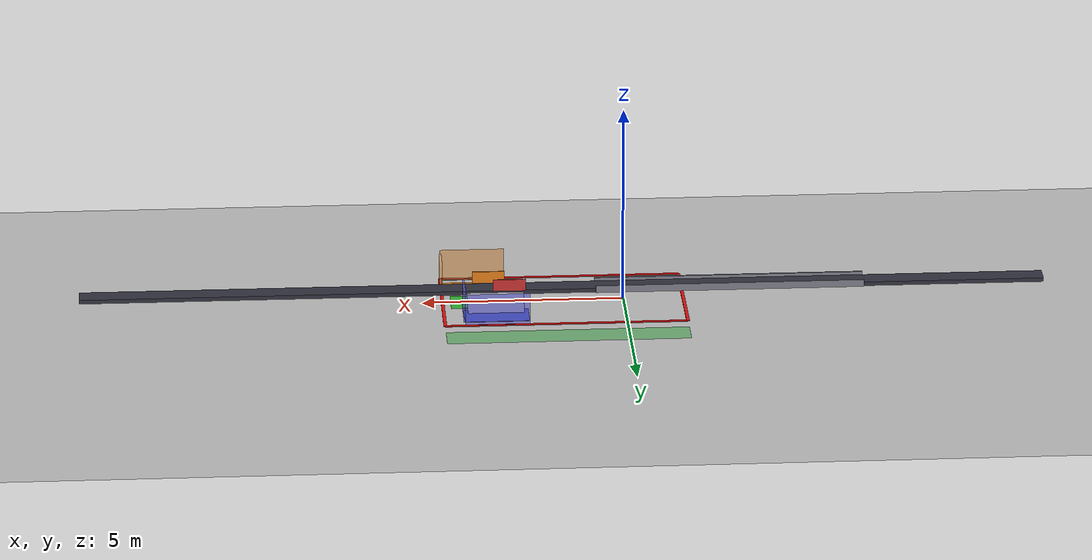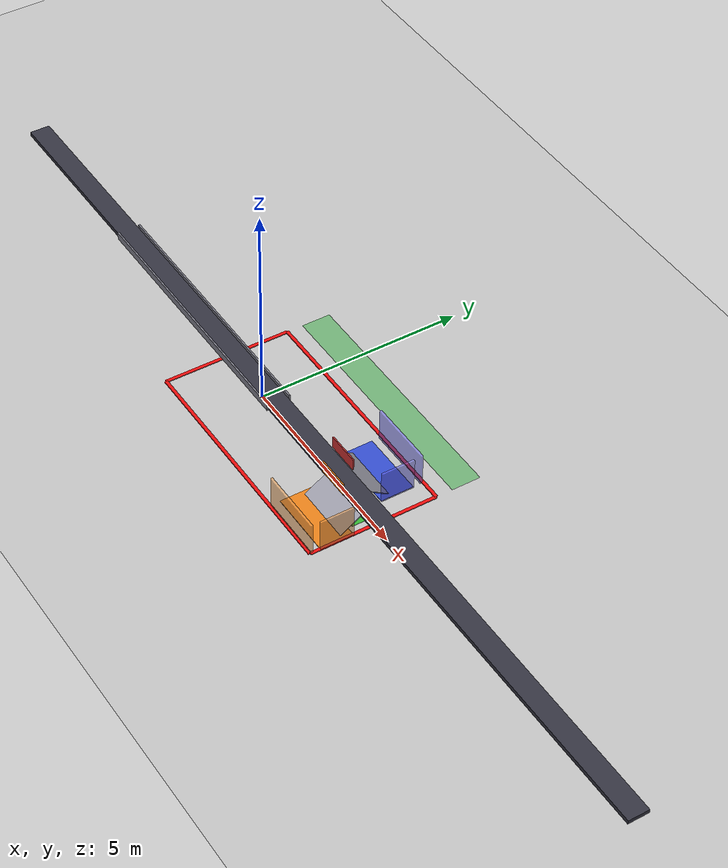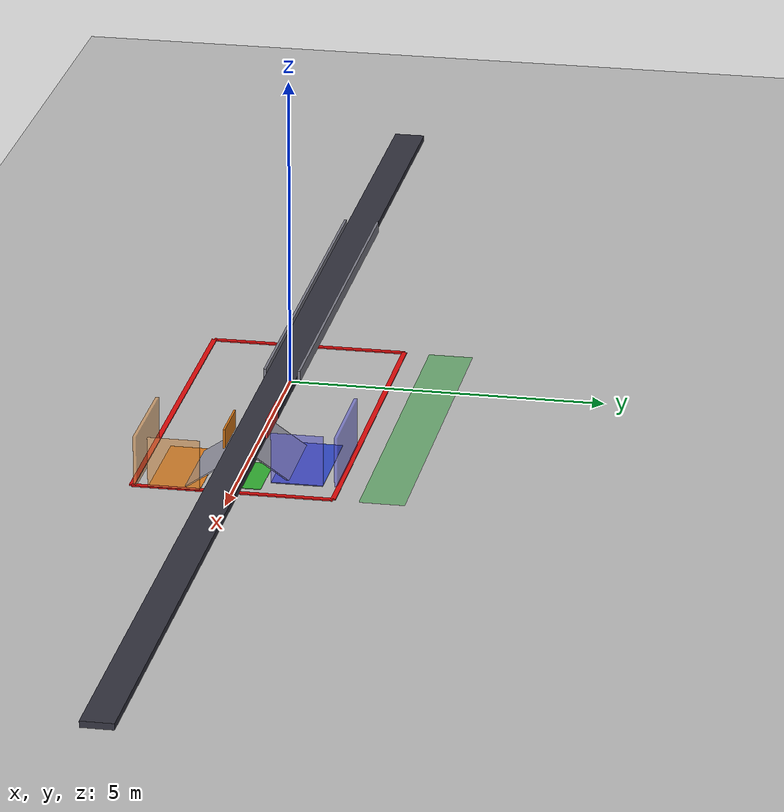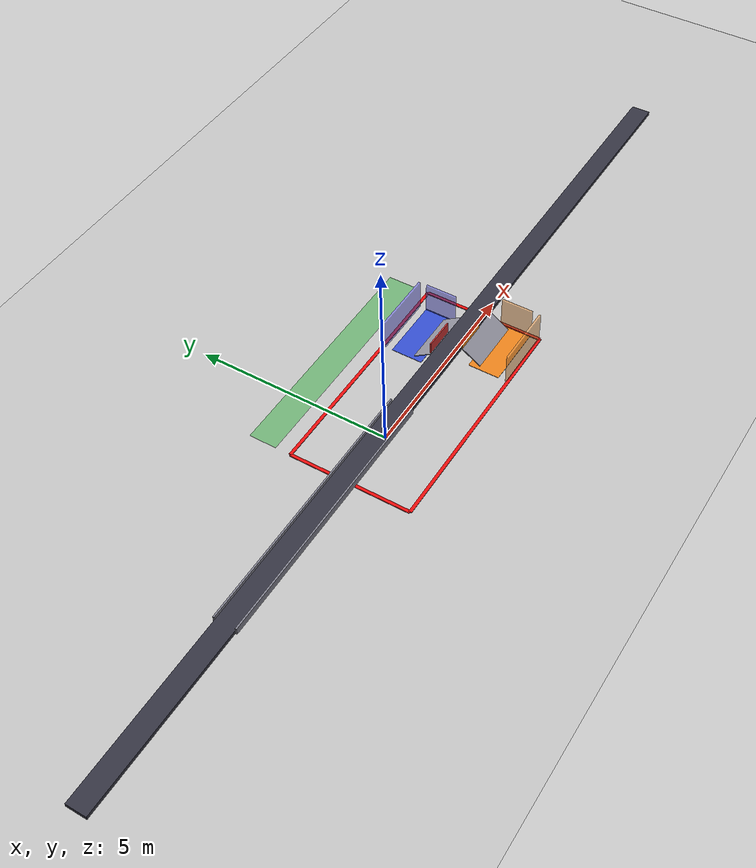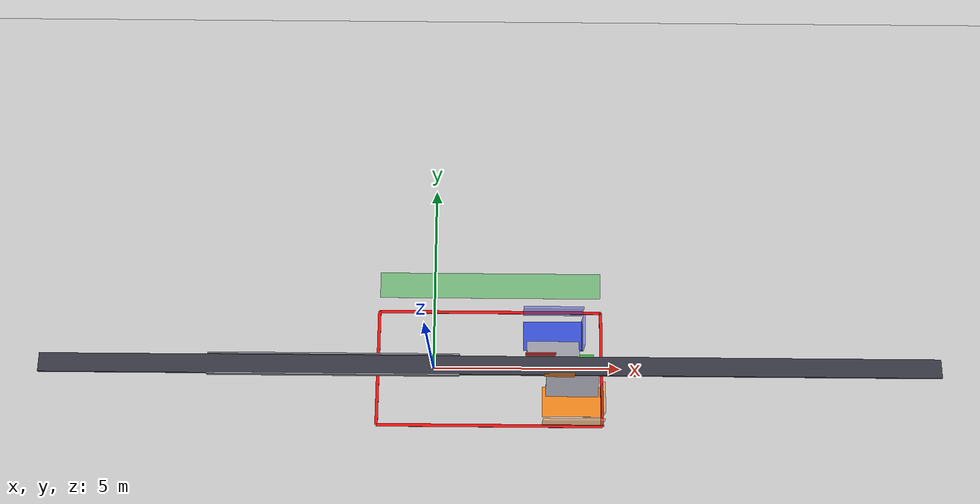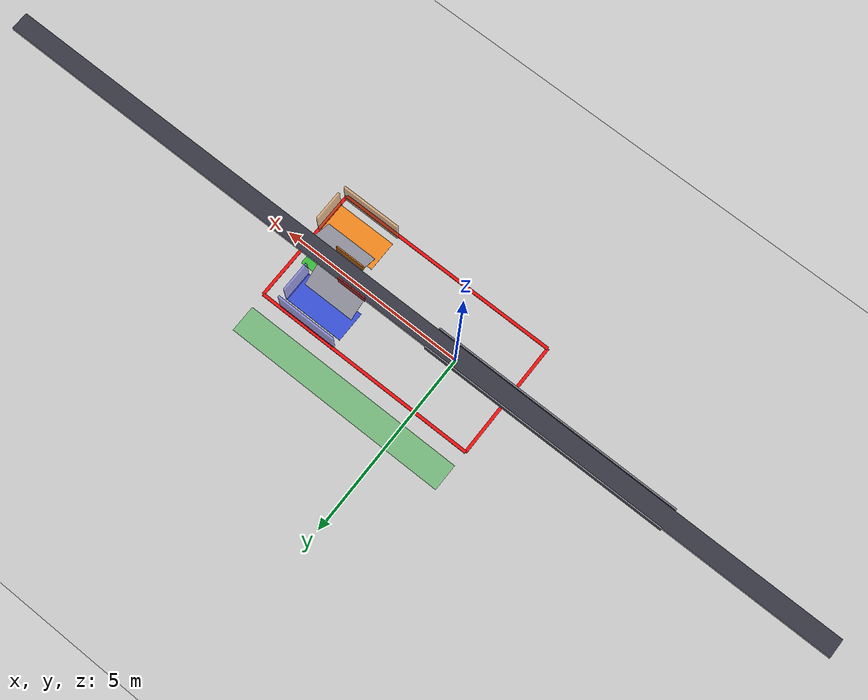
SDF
<?xml version="1.0"?>
<sdf version="1.8">
  <world name="cell">
    <physics name="default" type="ode">
      <max_step_size>0.002</max_step_size>
      <real_time_factor>1.0</real_time_factor>
    </physics>
    <plugin filename="ignition-gazebo-physics-system" name="ignition::gazebo::systems::Physics"/>
    <plugin filename="ignition-gazebo-user-commands-system" name="ignition::gazebo::systems::UserCommands"/>
    <plugin filename="ignition-gazebo-scene-broadcaster-system" name="ignition::gazebo::systems::SceneBroadcaster"/>
    <plugin filename="ignition-gazebo-sensors-system" name="ignition::gazebo::systems::Sensors">
      <render_engine>ogre2</render_engine>
    </plugin>

    <light type="directional" name="sun">
      <pose>0 0 8 0 0.3 0</pose>
      <diffuse>0.9 0.9 0.9 1</diffuse>
      <cast_shadows>true</cast_shadows>
      <direction>-0.3 0.2 -0.9</direction>
    </light>

    <!-- work area floor 10 x 6 m -->
    <model name="ground">
      <static>true</static>
      <link name="link">
        <collision name="collision">
          <geometry><plane><normal>0 0 1</normal><size>10 6</size></plane></geometry>
        </collision>
        <visual name="visual">
          <geometry><plane><normal>0 0 1</normal><size>10 6</size></plane></geometry>
          <material><ambient>0.75 0.75 0.75 1</ambient><diffuse>0.75 0.75 0.75 1</diffuse></material>
        </visual>
      </link>
    </model>

    <model name="safety_marking">
      <static>true</static>
      <link name="link">
        <visual name="hazard_north">
          <pose>1.5 1.55 0.012 0 0 0</pose>
          <geometry><box><size>6.0 0.08 0.02</size></box></geometry>
          <material><ambient>0.9 0.05 0.05 1</ambient><diffuse>0.9 0.05 0.05 1</diffuse></material>
        </visual>
        <visual name="hazard_south">
          <pose>1.5 -1.55 0.012 0 0 0</pose>
          <geometry><box><size>6.0 0.08 0.02</size></box></geometry>
          <material><ambient>0.9 0.05 0.05 1</ambient><diffuse>0.9 0.05 0.05 1</diffuse></material>
        </visual>
        <visual name="hazard_infeed">
          <pose>-1.5 0 0.012 0 0 0</pose>
          <geometry><box><size>0.08 3.1 0.02</size></box></geometry>
          <material><ambient>0.9 0.05 0.05 1</ambient><diffuse>0.9 0.05 0.05 1</diffuse></material>
        </visual>
        <visual name="hazard_outfeed">
          <pose>4.5 0 0.012 0 0 0</pose>
          <geometry><box><size>0.08 3.1 0.02</size></box></geometry>
          <material><ambient>0.9 0.05 0.05 1</ambient><diffuse>0.9 0.05 0.05 1</diffuse></material>
        </visual>
        <visual name="operator_safe_walkway">
          <pose>1.5 2.3 0.006 0 0 0</pose>
          <geometry><box><size>6.0 0.7 0.01</size></box></geometry>
          <material><ambient>0.1 0.65 0.15 0.45</ambient><diffuse>0.1 0.65 0.15 0.45</diffuse></material>
          <transparency>0.55</transparency>
        </visual>
      </link>
    </model>

    <model name="conveyor">
      <pose>1.5 0 0.35 0 0 0</pose>
      <link name="belt">
        <inertial><mass>200</mass><inertia><ixx>20</ixx><iyy>20</iyy><izz>20</izz></inertia></inertial>
        <collision name="collision">
          <geometry><box><size>24.0 0.5 0.1</size></box></geometry>
          <surface><friction><ode><mu>1.0</mu><mu2>0.2</mu2><fdir1>1 0 0</fdir1></ode></friction></surface>
        </collision>
        <visual name="visual">
          <geometry><box><size>24.0 0.5 0.1</size></box></geometry>
          <material><ambient>0.2 0.2 0.25 1</ambient><diffuse>0.2 0.2 0.25 1</diffuse></material>
        </visual>
      </link>
      <joint name="belt_joint" type="prismatic">
        <parent>world</parent>
        <child>belt</child>
        <axis>
          <xyz>1 0 0</xyz>
          <limit><lower>-10.0</lower><upper>10.0</upper></limit>
        </axis>
      </joint>
      <plugin filename="ignition-gazebo-joint-controller-system" name="ignition::gazebo::systems::JointController">
        <joint_name>belt_joint</joint_name>
        <topic>/conveyor/cmd_vel</topic>
      </plugin>
    </model>

    <model name="belt_guides">
      <static>true</static>
      <link name="link">
        <collision name="left">
          <pose>-2.65 0.272 0.39 0 0 0</pose>
          <geometry><box><size>6.7 0.04 0.18</size></box></geometry>
        </collision>
        <visual name="left_visual">
          <pose>-2.65 0.272 0.39 0 0 0</pose>
          <geometry><box><size>6.7 0.04 0.18</size></box></geometry>
          <material><ambient>0.5 0.5 0.55 1</ambient><diffuse>0.5 0.5 0.55 1</diffuse></material>
        </visual>
        <collision name="right">
          <pose>-2.65 -0.272 0.39 0 0 0</pose>
          <geometry><box><size>6.7 0.04 0.18</size></box></geometry>
        </collision>
        <visual name="right_visual">
          <pose>-2.65 -0.272 0.39 0 0 0</pose>
          <geometry><box><size>6.7 0.04 0.18</size></box></geometry>
          <material><ambient>0.5 0.5 0.55 1</ambient><diffuse>0.5 0.5 0.55 1</diffuse></material>
        </visual>
      </link>
    </model>

    <model name="belt_guides_camera">
      <static>true</static>
      <link name="link">
        <collision name="left">
          <pose>1.565 0.272 0.39 0 0 0</pose>
          <geometry><box><size>1.73 0.04 0.18</size></box></geometry>
        </collision>
        <collision name="right">
          <pose>1.815 -0.272 0.39 0 0 0</pose>
          <geometry><box><size>2.23 0.04 0.18</size></box></geometry>
        </collision>
      </link>
    </model>

    <!-- RGBD camera above the belt, looking straight down -->
    <model name="camera">
      <static>true</static>
      <pose>1.5 0 1.9 0 1.5708 0</pose>
      <link name="link">
        <sensor name="rgbd" type="rgbd_camera">
          <update_rate>15</update_rate>
          <topic>camera</topic>
          <camera>
            <horizontal_fov>1.05</horizontal_fov>
            <image><width>640</width><height>480</height></image>
            <clip><near>0.1</near><far>5.0</far></clip>
          </camera>
        </sensor>
      </link>
    </model>

    <model name="camera_side_neg_y">
      <static>true</static>
      <pose>1.5 -0.9 0.75 0 0.2709 1.5708</pose>
      <link name="link">
        <sensor name="depth" type="depth_camera">
          <update_rate>10</update_rate>
          <topic>camera_side_neg_y/depth_image</topic>
          <camera>
            <horizontal_fov>1.05</horizontal_fov>
            <image><width>320</width><height>240</height></image>
            <clip><near>0.1</near><far>5.0</far></clip>
          </camera>
        </sensor>
      </link>
    </model>

    <model name="camera_side_pos_y">
      <static>true</static>
      <pose>1.5 0.9 0.75 0 0.2709 -1.5708</pose>
      <link name="link">
        <!-- Depth only — see the neg_y head above for why. -->
        <!-- 320x240 at 10 Hz — same reasoning as the neg_y head above. -->
        <sensor name="depth" type="depth_camera">
          <update_rate>10</update_rate>
          <topic>camera_side_pos_y/depth_image</topic>
          <camera>
            <horizontal_fov>1.05</horizontal_fov>
            <image><width>320</width><height>240</height></image>
            <clip><near>0.1</near><far>5.0</far></clip>
          </camera>
        </sensor>
      </link>
    </model>

    <model name="diverter_c">
      <pose>3.25 0.28 0.552 0 0 0</pose>
      <link name="blade">
        <inertial><mass>5</mass><inertia><ixx>0.1</ixx><iyy>0.1</iyy><izz>0.1</izz></inertia></inertial>
        <collision name="collision">
          <pose>-0.40 0 0 0 0 0</pose>
          <geometry><box><size>0.80 0.03 0.30</size></box></geometry>
          <surface><friction><ode><mu>0.2</mu><mu2>0.2</mu2></ode></friction></surface>
        </collision>
        <visual name="visual">
          <pose>-0.40 0 0 0 0 0</pose>
          <geometry><box><size>0.80 0.03 0.30</size></box></geometry>
          <material><ambient>0.8 0.2 0.2 1</ambient><diffuse>0.8 0.2 0.2 1</diffuse></material>
        </visual>
      </link>
      <joint name="diverter_joint" type="revolute">
        <parent>world</parent>
        <child>blade</child>
        <axis>
          <xyz>0 0 1</xyz>
          <limit><lower>0</lower><upper>0.95</upper></limit>
        </axis>
      </joint>
      <plugin filename="ignition-gazebo-joint-state-publisher-system" name="ignition::gazebo::systems::JointStatePublisher">
        <joint_name>diverter_joint</joint_name>
      </plugin>
      <plugin filename="ignition-gazebo-joint-position-controller-system" name="ignition::gazebo::systems::JointPositionController">
        <joint_name>diverter_joint</joint_name>
        <topic>/pusher_c/cmd</topic>
        <p_gain>500</p_gain>
        <i_gain>0</i_gain>
        <d_gain>50</d_gain>
      </plugin>
    </model>
    <model name="diverter_d">
      <!-- Same lift as diverter_c: blade bottom 2 mm above the belt, not 50 mm inside it. -->
      <pose>3.75 -0.28 0.552 0 0 0</pose>
      <link name="blade">
        <inertial><mass>5</mass><inertia><ixx>0.1</ixx><iyy>0.1</iyy><izz>0.1</izz></inertia></inertial>
        <collision name="collision">
          <pose>-0.40 0 0 0 0 0</pose>
          <geometry><box><size>0.80 0.03 0.30</size></box></geometry>
          <surface><friction><ode><mu>0.2</mu><mu2>0.2</mu2></ode></friction></surface>
        </collision>
        <visual name="visual">
          <pose>-0.40 0 0 0 0 0</pose>
          <geometry><box><size>0.80 0.03 0.30</size></box></geometry>
          <material><ambient>0.9 0.5 0.1 1</ambient><diffuse>0.9 0.5 0.1 1</diffuse></material>
        </visual>
      </link>
      <!-- axis -Z so a POSITIVE command swings the blade across toward zone D:
           the controller speaks one convention (+v = engage) for both sides -->
      <joint name="diverter_joint" type="revolute">
        <parent>world</parent>
        <child>blade</child>
        <axis>
          <xyz>0 0 -1</xyz>
          <limit><lower>0</lower><upper>0.95</upper></limit>
        </axis>
      </joint>
      <plugin filename="ignition-gazebo-joint-state-publisher-system" name="ignition::gazebo::systems::JointStatePublisher">
        <joint_name>diverter_joint</joint_name>
      </plugin>
      <!-- Position control — see diverter_c for why velocity control locked the
           blade in its limit. Same gains: the two blades are the same mechanism. -->
      <plugin filename="ignition-gazebo-joint-position-controller-system" name="ignition::gazebo::systems::JointPositionController">
        <joint_name>diverter_joint</joint_name>
        <topic>/pusher_d/cmd</topic>
        <p_gain>500</p_gain>
        <i_gain>0</i_gain>
        <d_gain>50</d_gain>
      </plugin>
    </model>

    <!-- zone B: sorter infeed marker past the belt end -->
    <model name="zone_b">
      <static>true</static>
      <pose>3.8 0 0.005 0 0 0</pose>
      <link name="link">
        <collision name="collision"><geometry><box><size>1.0 0.8 0.01</size></box></geometry></collision>
        <visual name="visual">
          <geometry><box><size>1.0 0.8 0.01</size></box></geometry>
          <material><ambient>0.2 0.7 0.2 1</ambient><diffuse>0.2 0.7 0.2 1</diffuse></material>
        </visual>
      </link>
    </model>

    <model name="chute_c">
      <static>true</static>
      <pose>3.2 0.5 0.17 -0.597 0 0</pose>
      <link name="link">
        <collision name="collision">
          <geometry><box><size>1.4 0.605 0.02</size></box></geometry>
          <surface><friction><ode><mu>0.2</mu><mu2>0.2</mu2></ode></friction></surface>
        </collision>
        <visual name="visual">
          <geometry><box><size>1.4 0.605 0.02</size></box></geometry>
          <material><ambient>0.6 0.6 0.65 1</ambient><diffuse>0.6 0.6 0.65 1</diffuse></material>
        </visual>
      </link>
    </model>

    <model name="chute_d">
      <static>true</static>
      <pose>3.7 -0.5 0.17 0.597 0 0</pose>
      <link name="link">
        <collision name="collision">
          <geometry><box><size>1.4 0.605 0.02</size></box></geometry>
          <surface><friction><ode><mu>0.2</mu><mu2>0.2</mu2></ode></friction></surface>
        </collision>
        <visual name="visual">
          <geometry><box><size>1.4 0.605 0.02</size></box></geometry>
          <material><ambient>0.6 0.6 0.65 1</ambient><diffuse>0.6 0.6 0.65 1</diffuse></material>
        </visual>
      </link>
    </model>

    <model name="zone_c">
      <static>true</static>
      <pose>3.2 0.9 0.005 0 0 0</pose>
      <link name="link">
        <collision name="collision">
          <geometry><box><size>1.6 0.8 0.01</size></box></geometry>
          <surface><friction><ode><mu>0.05</mu><mu2>0.05</mu2></ode></friction></surface>
        </collision>
        <visual name="visual">
          <geometry><box><size>1.6 0.8 0.01</size></box></geometry>
          <material><ambient>0.2 0.3 0.8 1</ambient><diffuse>0.2 0.3 0.8 1</diffuse></material>
        </visual>
        <collision name="cage_wall">
          <pose>0 0.6 0.4 0 0 0</pose>
          <geometry><box><size>1.6 0.05 0.8</size></box></geometry>
        </collision>
        <visual name="cage">
          <pose>0 0.6 0.4 0 0 0</pose>
          <geometry><box><size>1.6 0.05 0.8</size></box></geometry>
          <material><ambient>0.4 0.4 0.9 0.6</ambient><diffuse>0.4 0.4 0.9 0.6</diffuse></material>
        </visual>
        <collision name="end_wall">
          <pose>0.8 0 0.4 0 0 0</pose>
          <geometry><box><size>0.05 0.8 0.8</size></box></geometry>
        </collision>
        <visual name="end">
          <pose>0.8 0 0.4 0 0 0</pose>
          <geometry><box><size>0.05 0.8 0.8</size></box></geometry>
          <material><ambient>0.4 0.4 0.9 0.6</ambient><diffuse>0.4 0.4 0.9 0.6</diffuse></material>
        </visual>
      </link>
    </model>
    <model name="zone_d">
      <static>true</static>
      <pose>3.7 -0.9 0.005 0 0 0</pose>
      <link name="link">
        <collision name="collision">
          <geometry><box><size>1.6 0.8 0.01</size></box></geometry>
          <surface><friction><ode><mu>0.05</mu><mu2>0.05</mu2></ode></friction></surface>
        </collision>
        <visual name="visual">
          <geometry><box><size>1.6 0.8 0.01</size></box></geometry>
          <material><ambient>0.9 0.5 0.1 1</ambient><diffuse>0.9 0.5 0.1 1</diffuse></material>
        </visual>
        <collision name="cage_wall">
          <pose>0 -0.6 0.4 0 0 0</pose>
          <geometry><box><size>1.6 0.05 0.8</size></box></geometry>
        </collision>
        <visual name="cage">
          <pose>0 -0.6 0.4 0 0 0</pose>
          <geometry><box><size>1.6 0.05 0.8</size></box></geometry>
          <material><ambient>0.9 0.6 0.3 0.6</ambient><diffuse>0.9 0.6 0.3 0.6</diffuse></material>
        </visual>
        <collision name="end_wall">
          <pose>0.8 0 0.4 0 0 0</pose>
          <geometry><box><size>0.05 0.8 0.8</size></box></geometry>
        </collision>
        <visual name="end">
          <pose>0.8 0 0.4 0 0 0</pose>
          <geometry><box><size>0.05 0.8 0.8</size></box></geometry>
          <material><ambient>0.9 0.6 0.3 0.6</ambient><diffuse>0.9 0.6 0.3 0.6</diffuse></material>
        </visual>
      </link>
    </model>
  </world>
</sdf>
